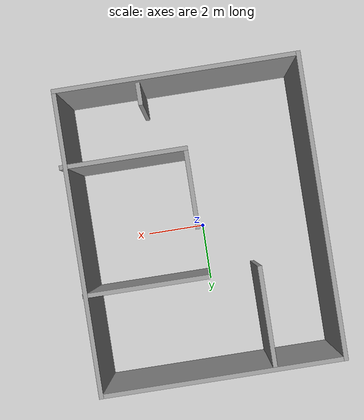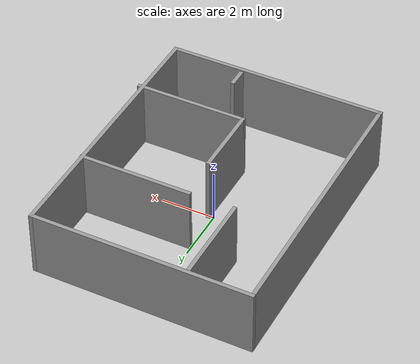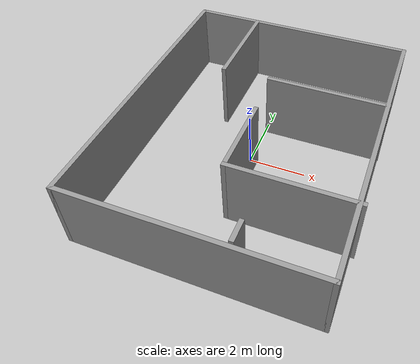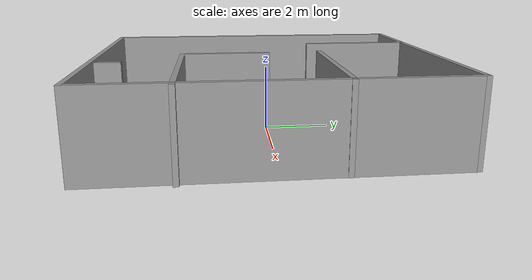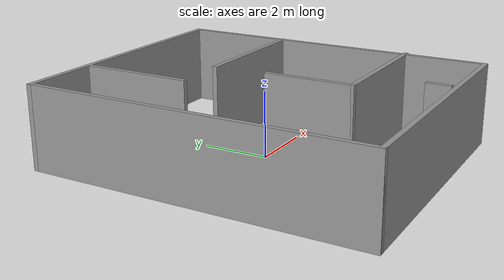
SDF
<?xml version='1.0'?>
<sdf version='1.6'>
  <model name='floorplan16wide'>
    <pose frame=''>0.17075 -0.033444 0 0 -0 0</pose>
    <link name='Wall_162'>
      <collision name='Wall_162_Collision'>
        <geometry>
          <box>
            <size>10.25 0.15 2.5</size>
          </box>
        </geometry>
        <pose frame=''>0 0 1.25 0 -0 0</pose>
      </collision>
      <visual name='Wall_162_Visual'>
        <pose frame=''>0 0 1.25 0 -0 0</pose>
        <geometry>
          <box>
            <size>10.25 0.15 2.5</size>
          </box>
        </geometry>
        <material>
          <script>
            <uri>file://media/materials/scripts/gazebo.material</uri>
            <name>Gazebo/Grey</name>
          </script>
          <ambient>1 1 1 1</ambient>
        </material>
        <meta>
          <layer>0</layer>
        </meta>
      </visual>
      <pose frame=''>-4.11146 0 0 0 -0 -1.5708</pose>
    </link>
    <link name='Wall_163'>
      <collision name='Wall_163_Collision'>
        <geometry>
          <box>
            <size>8.25 0.15 2.5</size>
          </box>
        </geometry>
        <pose frame=''>0 0 1.25 0 -0 0</pose>
      </collision>
      <visual name='Wall_163_Visual'>
        <pose frame=''>0 0 1.25 0 -0 0</pose>
        <geometry>
          <box>
            <size>8.25 0.15 2.5</size>
          </box>
        </geometry>
        <material>
          <script>
            <uri>file://media/materials/scripts/gazebo.material</uri>
            <name>Gazebo/Grey</name>
          </script>
          <ambient>1 1 1 1</ambient>
        </material>
        <meta>
          <layer>0</layer>
        </meta>
      </visual>
      <pose frame=''>-0.061465 -5.05 0 0 -0 0</pose>
    </link>
    <link name='Wall_164'>
      <collision name='Wall_164_Collision'>
        <geometry>
          <box>
            <size>10.25 0.15 2.5</size>
          </box>
        </geometry>
        <pose frame=''>0 0 1.25 0 -0 0</pose>
      </collision>
      <visual name='Wall_164_Visual'>
        <pose frame=''>0 0 1.25 0 -0 0</pose>
        <geometry>
          <box>
            <size>10.25 0.15 2.5</size>
          </box>
        </geometry>
        <material>
          <script>
            <uri>file://media/materials/scripts/gazebo.material</uri>
            <name>Gazebo/Grey</name>
          </script>
          <ambient>1 1 1 1</ambient>
        </material>
        <meta>
          <layer>0</layer>
        </meta>
      </visual>
      <pose frame=''>3.98854 0 0 0 -0 1.5708</pose>
    </link>
    <link name='Wall_165'>
      <collision name='Wall_165_Collision'>
        <geometry>
          <box>
            <size>8.25 0.15 2.5</size>
          </box>
        </geometry>
        <pose frame=''>0 0 1.25 0 -0 0</pose>
      </collision>
      <visual name='Wall_165_Visual'>
        <pose frame=''>0 0 1.25 0 -0 0</pose>
        <geometry>
          <box>
            <size>8.25 0.15 2.5</size>
          </box>
        </geometry>
        <material>
          <script>
            <uri>file://media/materials/scripts/gazebo.material</uri>
            <name>Gazebo/Grey</name>
          </script>
          <ambient>1 1 1 1</ambient>
        </material>
        <meta>
          <layer>0</layer>
        </meta>
      </visual>
      <pose frame=''>-0.061465 5.05 0 0 -0 3.14159</pose>
    </link>
    <link name='Wall_167'>
      <collision name='Wall_167_Collision'>
        <geometry>
          <box>
            <size>3.5 0.15 2.5</size>
          </box>
        </geometry>
        <pose frame=''>0 0 1.25 0 -0 0</pose>
      </collision>
      <visual name='Wall_167_Visual'>
        <pose frame=''>0 0 1.25 0 -0 0</pose>
        <geometry>
          <box>
            <size>3.5 0.15 2.5</size>
          </box>
        </geometry>
        <material>
          <script>
            <uri>file://media/materials/scripts/gazebo.material</uri>
            <name>Gazebo/Grey</name>
          </script>
          <ambient>1 1 1 1</ambient>
        </material>
        <meta>
          <layer>0</layer>
        </meta>
      </visual>
      <pose frame=''>-1.78684 3.375 0 0 -0 -1.5708</pose>
    </link>
    <link name='Wall_170'>
      <collision name='Wall_170_Collision'>
        <geometry>
          <box>
            <size>4.25 0.15 2.5</size>
          </box>
        </geometry>
        <pose frame=''>0 0 1.25 0 -0 0</pose>
      </collision>
      <visual name='Wall_170_Visual'>
        <pose frame=''>0 0 1.25 0 -0 0</pose>
        <geometry>
          <box>
            <size>4.25 0.15 2.5</size>
          </box>
        </geometry>
        <material>
          <script>
            <uri>file://media/materials/scripts/gazebo.material</uri>
            <name>Gazebo/Grey</name>
          </script>
          <ambient>1 1 1 1</ambient>
        </material>
        <meta>
          <layer>0</layer>
        </meta>
      </visual>
      <pose frame=''>1.95738 1.71919 0 0 -0 3.14159</pose>
    </link>
    <link name='Wall_172'>
      <collision name='Wall_172_Collision'>
        <geometry>
          <box>
            <size>4.25 0.15 2.5</size>
          </box>
        </geometry>
        <pose frame=''>0 0 1.25 0 -0 0</pose>
      </collision>
      <visual name='Wall_172_Visual'>
        <pose frame=''>0 0 1.25 0 -0 0</pose>
        <geometry>
          <box>
            <size>4.25 0.15 2.5</size>
          </box>
        </geometry>
        <material>
          <script>
            <uri>file://media/materials/scripts/gazebo.material</uri>
            <name>Gazebo/Grey</name>
          </script>
          <ambient>1 1 1 1</ambient>
        </material>
        <meta>
          <layer>0</layer>
        </meta>
      </visual>
      <pose frame=''>2.06147 -2.5484 0 0 -0 3.14159</pose>
    </link>
    <link name='Wall_173'>
      <collision name='Wall_173_Collision'>
        <geometry>
          <box>
            <size>2.75 0.15 2.5</size>
          </box>
        </geometry>
        <pose frame=''>0 0 1.25 0 -0 0</pose>
      </collision>
      <visual name='Wall_173_Visual'>
        <pose frame=''>0 0 1.25 0 -0 0</pose>
        <geometry>
          <box>
            <size>2.75 0.15 2.5</size>
          </box>
        </geometry>
        <material>
          <script>
            <uri>file://media/materials/scripts/gazebo.material</uri>
            <name>Gazebo/Grey</name>
          </script>
          <ambient>1 1 1 1</ambient>
        </material>
        <meta>
          <layer>0</layer>
        </meta>
      </visual>
      <pose frame=''>0.011466 -1.2484 0 0 -0 1.5708</pose>
    </link>
    <link name='Wall_175'>
      <collision name='Wall_175_Collision'>
        <geometry>
          <box>
            <size>0.75 0.15 2.5</size>
          </box>
        </geometry>
        <pose frame=''>0 0 1.25 0 -0 0</pose>
      </collision>
      <visual name='Wall_175_Visual'>
        <pose frame=''>0 0 1.25 0 -0 0</pose>
        <geometry>
          <box>
            <size>0.75 0.15 2.5</size>
          </box>
        </geometry>
        <material>
          <script>
            <uri>file://media/materials/scripts/gazebo.material</uri>
            <name>Gazebo/Grey</name>
          </script>
          <ambient>1 1 1 1</ambient>
        </material>
        <meta>
          <layer>0</layer>
        </meta>
      </visual>
      <pose frame=''>1.23171 -4.53833 0 0 -0 1.5708</pose>
    </link>
    <static>1</static>
  </model>
</sdf>
